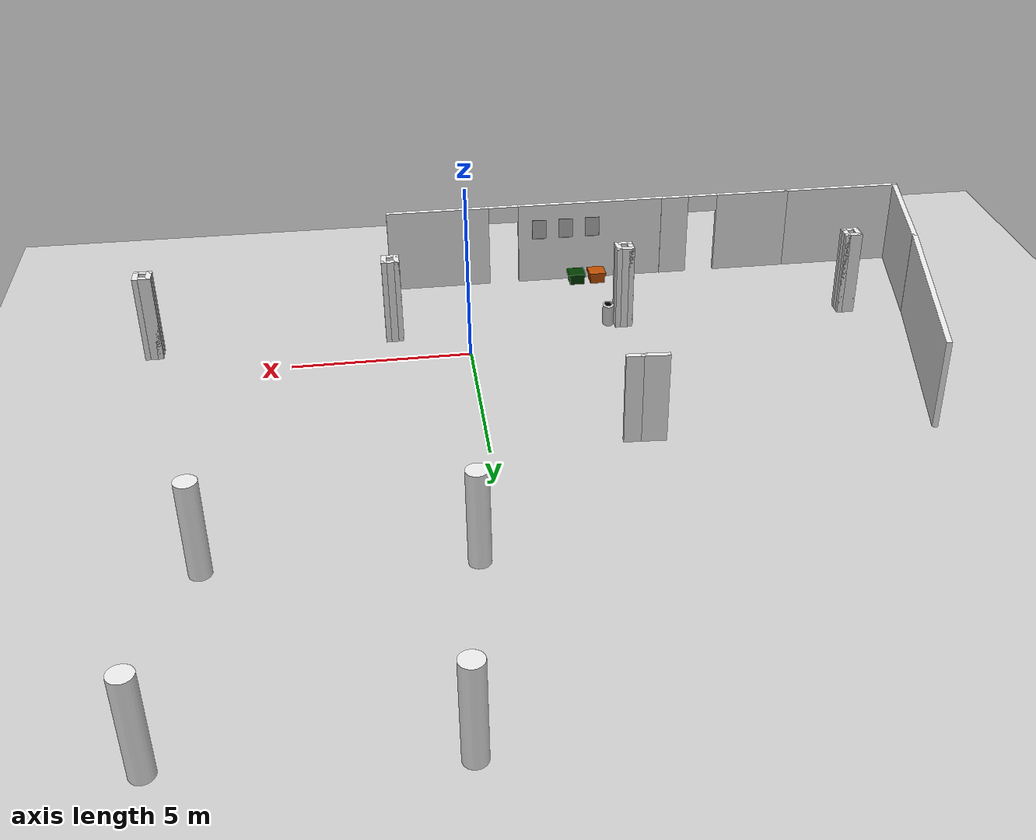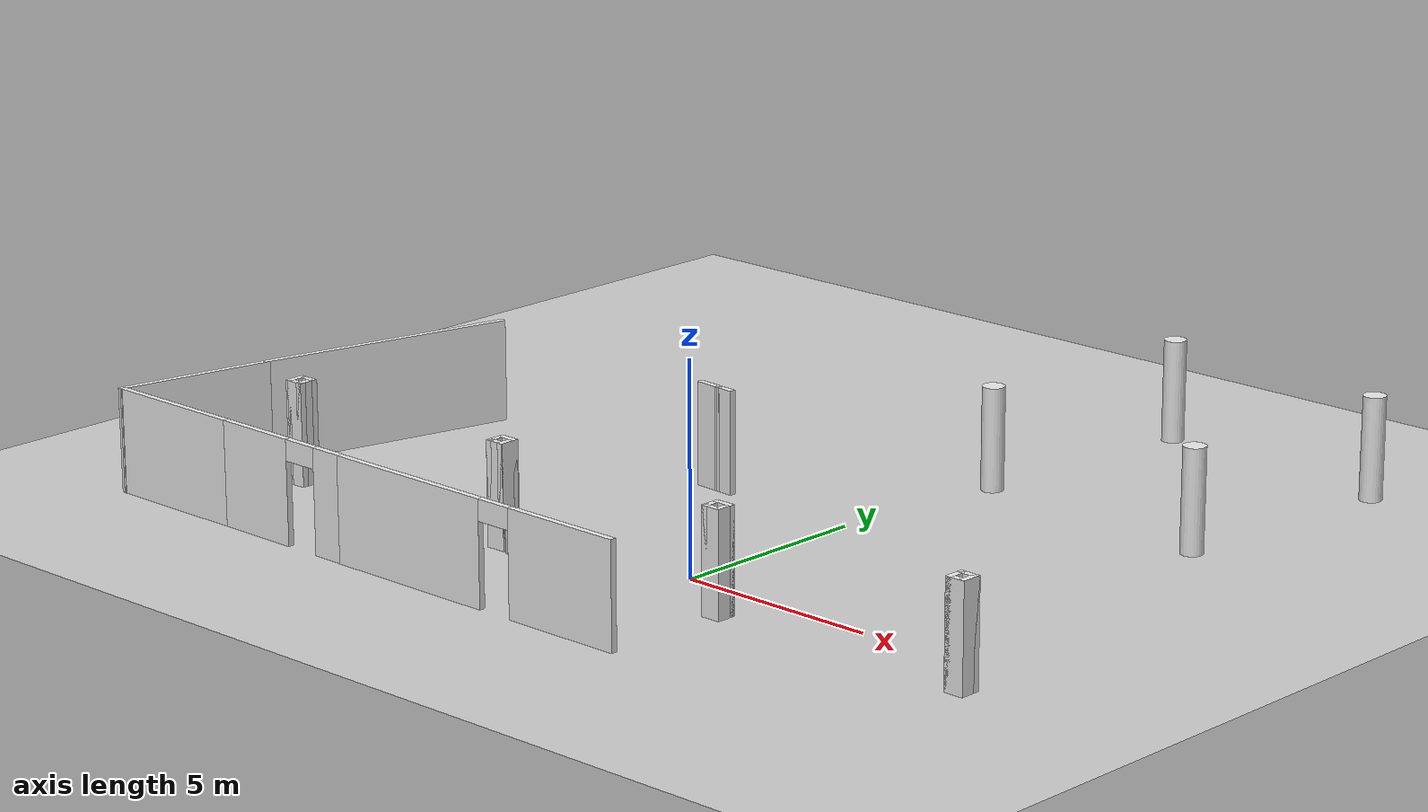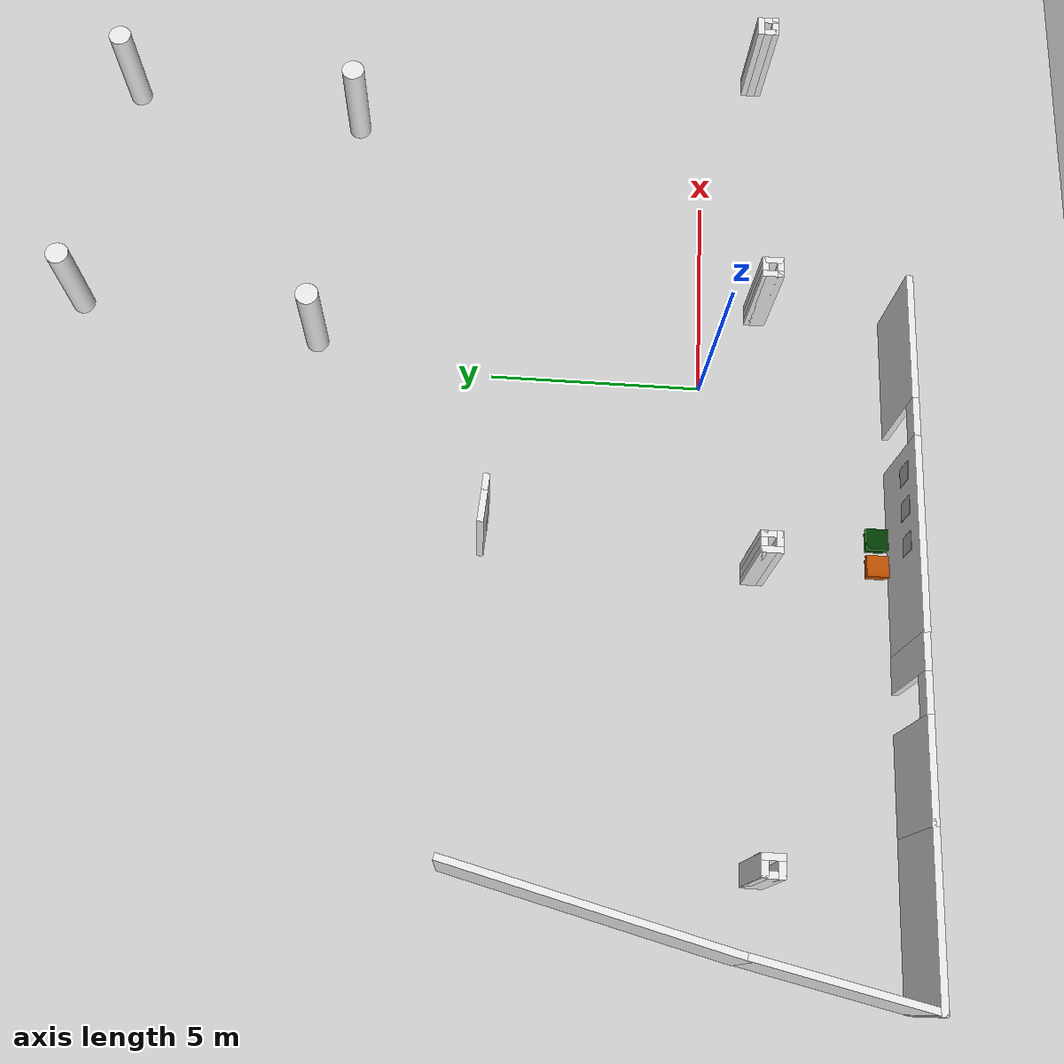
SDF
<sdf version="1.6">
 <world name="default">
  <model name="ground_plane">
   <static>1</static>
   <link name="link">
    <collision name="collision">
     <geometry><plane><normal>0 0 1</normal><size>100 100</size></plane></geometry>
     <surface><friction><ode><mu>100</mu><mu2>50</mu2></ode></friction></surface>
    </collision>
    <visual name="visual">
     <cast_shadows>0</cast_shadows>
     <geometry><plane><normal>0 0 1</normal><size>100 100</size></plane></geometry>
     <material>
      <script><uri>file://media/materials/scripts/gazebo.material</uri><name>Gazebo/Grey</name></script>
     </material>
    </visual>
   </link>
  </model>
  <model name="columns">
   <pose>-1.23086 -1.27462 0 0 -0 0</pose>
   <link name="Wall_337">
    <collision name="Wall_337_Collision">
     <geometry><box><size>0.5 0.15 2.5</size></box></geometry>
     <pose>0 0 1.25 0 -0 0</pose>
    </collision>
    <visual name="Wall_337_Visual">
     <pose>0 0 1.25 0 -0 0</pose>
     <geometry><box><size>0.5 0.15 2.5</size></box></geometry>
     <material>
      <script><uri>file://media/materials/scripts/gazebo.material</uri><name>Gazebo/White</name></script>
      <ambient>1 1 1 1</ambient>
     </material>
     <meta><layer>0</layer></meta>
    </visual>
    <pose>9.87053 0.009422 0 0 0 -1.5708</pose>
   </link>
   <link name="Wall_338">
    <collision name="Wall_338_Collision">
     <geometry><box><size>0.5 0.15 2.5</size></box></geometry>
     <pose>0 0 1.25 0 -0 0</pose>
    </collision>
    <visual name="Wall_338_Visual">
     <pose>0 0 1.25 0 -0 0</pose>
     <geometry><box><size>0.5 0.15 2.5</size></box></geometry>
     <material>
      <script><uri>file://media/materials/scripts/gazebo.material</uri><name>Gazebo/White</name></script>
      <ambient>1 1 1 1</ambient>
     </material>
     <meta><layer>0</layer></meta>
    </visual>
    <pose>10.0455 -0.165578 0 0 -0 0</pose>
   </link>
   <link name="Wall_339">
    <collision name="Wall_339_Collision">
     <geometry><box><size>0.5 0.15 2.5</size></box></geometry>
     <pose>0 0 1.25 0 -0 0</pose>
    </collision>
    <visual name="Wall_339_Visual">
     <pose>0 0 1.25 0 -0 0</pose>
     <geometry><box><size>0.5 0.15 2.5</size></box></geometry>
     <material>
      <script><uri>file://media/materials/scripts/gazebo.material</uri><name>Gazebo/White</name></script>
      <ambient>1 1 1 1</ambient>
     </material>
     <meta><layer>0</layer></meta>
    </visual>
    <pose>10.2205 0.009422 0 0 -0 1.5708</pose>
   </link>
   <link name="Wall_340">
    <collision name="Wall_340_Collision">
     <geometry><box><size>0.5 0.15 2.5</size></box></geometry>
     <pose>0 0 1.25 0 -0 0</pose>
    </collision>
    <visual name="Wall_340_Visual">
     <pose>0 0 1.25 0 -0 0</pose>
     <geometry><box><size>0.5 0.15 2.5</size></box></geometry>
     <material>
      <script><uri>file://media/materials/scripts/gazebo.material</uri><name>Gazebo/White</name></script>
      <ambient>1 1 1 1</ambient>
     </material>
     <meta><layer>0</layer></meta>
    </visual>
    <pose>10.0455 0.184422 0 0 -0 3.14159</pose>
   </link>
   <link name="Wall_342">
    <collision name="Wall_342_Collision">
     <geometry><box><size>0.5 0.15 2.5</size></box></geometry>
     <pose>0 0 1.25 0 -0 0</pose>
    </collision>
    <visual name="Wall_342_Visual">
     <pose>0 0 1.25 0 -0 0</pose>
     <geometry><box><size>0.5 0.15 2.5</size></box></geometry>
     <material>
      <script><uri>file://media/materials/scripts/gazebo.material</uri><name>Gazebo/White</name></script>
      <ambient>1 1 1 1</ambient>
     </material>
     <meta><layer>0</layer></meta>
    </visual>
    <pose>3.13524 -0.056002 0 0 0 -1.5708</pose>
   </link>
   <link name="Wall_343">
    <collision name="Wall_343_Collision">
     <geometry><box><size>0.5 0.15 2.5</size></box></geometry>
     <pose>0 0 1.25 0 -0 0</pose>
    </collision>
    <visual name="Wall_343_Visual">
     <pose>0 0 1.25 0 -0 0</pose>
     <geometry><box><size>0.5 0.15 2.5</size></box></geometry>
     <material>
      <script><uri>file://media/materials/scripts/gazebo.material</uri><name>Gazebo/White</name></script>
      <ambient>1 1 1 1</ambient>
     </material>
     <meta><layer>0</layer></meta>
    </visual>
    <pose>3.31024 -0.231003 0 0 -0 0</pose>
   </link>
   <link name="Wall_344">
    <collision name="Wall_344_Collision">
     <geometry><box><size>0.5 0.15 2.5</size></box></geometry>
     <pose>0 0 1.25 0 -0 0</pose>
    </collision>
    <visual name="Wall_344_Visual">
     <pose>0 0 1.25 0 -0 0</pose>
     <geometry><box><size>0.5 0.15 2.5</size></box></geometry>
     <material>
      <script><uri>file://media/materials/scripts/gazebo.material</uri><name>Gazebo/White</name></script>
      <ambient>1 1 1 1</ambient>
     </material>
     <meta><layer>0</layer></meta>
    </visual>
    <pose>3.48524 -0.056002 0 0 -0 1.5708</pose>
   </link>
   <link name="Wall_345">
    <collision name="Wall_345_Collision">
     <geometry><box><size>0.5 0.15 2.5</size></box></geometry>
     <pose>0 0 1.25 0 -0 0</pose>
    </collision>
    <visual name="Wall_345_Visual">
     <pose>0 0 1.25 0 -0 0</pose>
     <geometry><box><size>0.5 0.15 2.5</size></box></geometry>
     <material>
      <script><uri>file://media/materials/scripts/gazebo.material</uri><name>Gazebo/White</name></script>
      <ambient>1 1 1 1</ambient>
     </material>
     <meta><layer>0</layer></meta>
    </visual>
    <pose>3.31024 0.118997 0 0 -0 3.14159</pose>
   </link>
   <link name="Wall_350">
    <collision name="Wall_350_Collision">
     <geometry><box><size>0.5 0.15 2.5</size></box></geometry>
     <pose>0 0 1.25 0 -0 0</pose>
    </collision>
    <visual name="Wall_350_Visual">
     <pose>0 0 1.25 0 -0 0</pose>
     <geometry><box><size>0.5 0.15 2.5</size></box></geometry>
     <material>
      <script><uri>file://media/materials/scripts/gazebo.material</uri><name>Gazebo/White</name></script>
      <ambient>1 1 1 1</ambient>
     </material>
     <meta><layer>0</layer></meta>
    </visual>
    <pose>-3.34038 0.200077 0 0 -0 0</pose>
   </link>
   <link name="Wall_351">
    <collision name="Wall_351_Collision">
     <geometry><box><size>0.5 0.15 2.5</size></box></geometry>
     <pose>0 0 1.25 0 -0 0</pose>
    </collision>
    <visual name="Wall_351_Visual">
     <pose>0 0 1.25 0 -0 0</pose>
     <geometry><box><size>0.5 0.15 2.5</size></box></geometry>
     <material>
      <script><uri>file://media/materials/scripts/gazebo.material</uri><name>Gazebo/White</name></script>
      <ambient>1 1 1 1</ambient>
     </material>
     <meta><layer>0</layer></meta>
    </visual>
    <pose>-3.16538 0.025078 0 0 0 -1.5708</pose>
   </link>
   <link name="Wall_352">
    <collision name="Wall_352_Collision">
     <geometry><box><size>0.5 0.15 2.5</size></box></geometry>
     <pose>0 0 1.25 0 -0 0</pose>
    </collision>
    <visual name="Wall_352_Visual">
     <pose>0 0 1.25 0 -0 0</pose>
     <geometry><box><size>0.5 0.15 2.5</size></box></geometry>
     <material>
      <script><uri>file://media/materials/scripts/gazebo.material</uri><name>Gazebo/White</name></script>
      <ambient>1 1 1 1</ambient>
     </material>
     <meta><layer>0</layer></meta>
    </visual>
    <pose>-3.34038 -0.149923 0 0 -0 3.14159</pose>
   </link>
   <link name="Wall_353">
    <collision name="Wall_353_Collision">
     <geometry><box><size>0.5 0.15 2.5</size></box></geometry>
     <pose>0 0 1.25 0 -0 0</pose>
    </collision>
    <visual name="Wall_353_Visual">
     <pose>0 0 1.25 0 -0 0</pose>
     <geometry><box><size>0.5 0.15 2.5</size></box></geometry>
     <material>
      <script><uri>file://media/materials/scripts/gazebo.material</uri><name>Gazebo/White</name></script>
      <ambient>1 1 1 1</ambient>
     </material>
     <meta><layer>0</layer></meta>
    </visual>
    <pose>-3.51538 0.025078 0 0 -0 1.5708</pose>
   </link>
   <link name="Wall_355">
    <collision name="Wall_355_Collision">
     <geometry><box><size>0.5 0.15 2.5</size></box></geometry>
     <pose>0 0 1.25 0 -0 0</pose>
    </collision>
    <visual name="Wall_355_Visual">
     <pose>0 0 1.25 0 -0 0</pose>
     <geometry><box><size>0.5 0.15 2.5</size></box></geometry>
     <material>
      <script><uri>file://media/materials/scripts/gazebo.material</uri><name>Gazebo/White</name></script>
      <ambient>1 1 1 1</ambient>
     </material>
     <meta><layer>0</layer></meta>
    </visual>
    <pose>-10.2205 0.056002 0 0 0 -1.5708</pose>
   </link>
   <link name="Wall_356">
    <collision name="Wall_356_Collision">
     <geometry><box><size>0.5 0.15 2.5</size></box></geometry>
     <pose>0 0 1.25 0 -0 0</pose>
    </collision>
    <visual name="Wall_356_Visual">
     <pose>0 0 1.25 0 -0 0</pose>
     <geometry><box><size>0.5 0.15 2.5</size></box></geometry>
     <material>
      <script><uri>file://media/materials/scripts/gazebo.material</uri><name>Gazebo/White</name></script>
      <ambient>1 1 1 1</ambient>
     </material>
     <meta><layer>0</layer></meta>
    </visual>
    <pose>-10.0455 -0.118998 0 0 -0 0</pose>
   </link>
   <link name="Wall_357">
    <collision name="Wall_357_Collision">
     <geometry><box><size>0.5 0.15 2.5</size></box></geometry>
     <pose>0 0 1.25 0 -0 0</pose>
    </collision>
    <visual name="Wall_357_Visual">
     <pose>0 0 1.25 0 -0 0</pose>
     <geometry><box><size>0.5 0.15 2.5</size></box></geometry>
     <material>
      <script><uri>file://media/materials/scripts/gazebo.material</uri><name>Gazebo/White</name></script>
      <ambient>1 1 1 1</ambient>
     </material>
     <meta><layer>0</layer></meta>
    </visual>
    <pose>-9.87053 0.056002 0 0 -0 1.5708</pose>
   </link>
   <link name="Wall_358">
    <collision name="Wall_358_Collision">
     <geometry><box><size>0.5 0.15 2.5</size></box></geometry>
     <pose>0 0 1.25 0 -0 0</pose>
    </collision>
    <visual name="Wall_358_Visual">
     <pose>0 0 1.25 0 -0 0</pose>
     <geometry><box><size>0.5 0.15 2.5</size></box></geometry>
     <material>
      <script><uri>file://media/materials/scripts/gazebo.material</uri><name>Gazebo/White</name></script>
      <ambient>1 1 1 1</ambient>
     </material>
     <meta><layer>0</layer></meta>
    </visual>
    <pose>-10.0455 0.231003 0 0 -0 3.14159</pose>
   </link>
   <static>1</static>
  </model>
  <model name="ucu_basic_frame.world">
   <link name="Wall_187">
    <pose>-2.91004 -8.08571 0 0 0 -3.14</pose>
    <visual name="Wall_187_Visual_0">
     <pose>-2.67697 0 1.25 0 -0 0</pose>
     <geometry><box><size>3.06354 0.15 2.5</size></box></geometry>
     <material>
      <script><uri>file://media/materials/scripts/gazebo.material</uri><name>Gazebo/White</name></script>
      <ambient>1 1 1 1</ambient>
      <diffuse>1 1 1 1</diffuse>
      <specular>0 0 0 1</specular>
      <emissive>0 0 0 1</emissive>
     </material>
     <meta><layer>0</layer></meta>
    </visual>
    <visual name="Wall_187_Visual_2">
     <pose>-0.695201 0 2.25 0 -0 0</pose>
     <geometry><box><size>0.9 0.15 0.5</size></box></geometry>
     <material>
      <script><uri>file://media/materials/scripts/gazebo.material</uri><name>Gazebo/White</name></script>
      <ambient>1 1 1 1</ambient>
      <diffuse>1 1 1 1</diffuse>
      <specular>0 0 0 1</specular>
      <emissive>0 0 0 1</emissive>
     </material>
     <meta><layer>0</layer></meta>
    </visual>
    <visual name="Wall_187_Visual_1">
     <pose>1.98177 0 1.25 0 -0 0</pose>
     <geometry><box><size>4.45394 0.15 2.5</size></box></geometry>
     <material>
      <script><uri>file://media/materials/scripts/gazebo.material</uri><name>Gazebo/White</name></script>
      <ambient>1 1 1 1</ambient>
      <diffuse>1 1 1 1</diffuse>
      <specular>0 0 0 1</specular>
      <emissive>0 0 0 1</emissive>
     </material>
     <meta><layer>0</layer></meta>
    </visual>
    <collision name="Wall_187_Collision_0">
     <pose>-2.67697 0 1.25 0 -0 0</pose>
     <geometry><box><size>3.06354 0.15 2.5</size></box></geometry>
     <surface>
      <friction>
       <ode><mu>1</mu><mu2>1</mu2><fdir1>0 0 0</fdir1><slip1>0</slip1><slip2>0</slip2></ode>
       <torsional>
        <coefficient>1</coefficient>
        <patch_radius>0</patch_radius>
        <surface_radius>0</surface_radius>
        <use_patch_radius>1</use_patch_radius>
        <ode><slip>0</slip></ode>
       </torsional>
      </friction>
      <bounce><restitution_coefficient>0</restitution_coefficient><threshold>1e+06</threshold></bounce>
      <contact>
       <collide_without_contact>0</collide_without_contact>
       <collide_without_contact_bitmask>1</collide_without_contact_bitmask>
       <collide_bitmask>1</collide_bitmask>
       <ode>
        <soft_cfm>0</soft_cfm>
        <soft_erp>0.2</soft_erp>
        <kp>1e+13</kp>
        <kd>1</kd>
        <max_vel>0.01</max_vel>
        <min_depth>0</min_depth>
       </ode>
       <bullet>
        <split_impulse>1</split_impulse>
        <split_impulse_penetration_threshold>-0.01</split_impulse_penetration_threshold>
        <soft_cfm>0</soft_cfm>
        <soft_erp>0.2</soft_erp>
        <kp>1e+13</kp>
        <kd>1</kd>
       </bullet>
      </contact>
     </surface>
    </collision>
    <collision name="Wall_187_Collision_1">
     <pose>1.98177 0 1.25 0 -0 0</pose>
     <geometry><box><size>4.45394 0.15 2.5</size></box></geometry>
     <surface>
      <friction>
       <ode><mu>1</mu><mu2>1</mu2><fdir1>0 0 0</fdir1><slip1>0</slip1><slip2>0</slip2></ode>
       <torsional>
        <coefficient>1</coefficient>
        <patch_radius>0</patch_radius>
        <surface_radius>0</surface_radius>
        <use_patch_radius>1</use_patch_radius>
        <ode><slip>0</slip></ode>
       </torsional>
      </friction>
      <bounce><restitution_coefficient>0</restitution_coefficient><threshold>1e+06</threshold></bounce>
      <contact>
       <collide_without_contact>0</collide_without_contact>
       <collide_without_contact_bitmask>1</collide_without_contact_bitmask>
       <collide_bitmask>1</collide_bitmask>
       <ode>
        <soft_cfm>0</soft_cfm>
        <soft_erp>0.2</soft_erp>
        <kp>1e+13</kp>
        <kd>1</kd>
        <max_vel>0.01</max_vel>
        <min_depth>0</min_depth>
       </ode>
       <bullet>
        <split_impulse>1</split_impulse>
        <split_impulse_penetration_threshold>-0.01</split_impulse_penetration_threshold>
        <soft_cfm>0</soft_cfm>
        <soft_erp>0.2</soft_erp>
        <kp>1e+13</kp>
        <kd>1</kd>
       </bullet>
      </contact>
     </surface>
    </collision>
    <collision name="Wall_187_Collision_2">
     <pose>-0.695201 0 2.25 0 -0 0</pose>
     <geometry><box><size>0.9 0.15 0.5</size></box></geometry>
     <surface>
      <friction>
       <ode><mu>1</mu><mu2>1</mu2><fdir1>0 0 0</fdir1><slip1>0</slip1><slip2>0</slip2></ode>
       <torsional>
        <coefficient>1</coefficient>
        <patch_radius>0</patch_radius>
        <surface_radius>0</surface_radius>
        <use_patch_radius>1</use_patch_radius>
        <ode><slip>0</slip></ode>
       </torsional>
      </friction>
      <bounce><restitution_coefficient>0</restitution_coefficient><threshold>1e+06</threshold></bounce>
      <contact>
       <collide_without_contact>0</collide_without_contact>
       <collide_without_contact_bitmask>1</collide_without_contact_bitmask>
       <collide_bitmask>1</collide_bitmask>
       <ode>
        <soft_cfm>0</soft_cfm>
        <soft_erp>0.2</soft_erp>
        <kp>1e+13</kp>
        <kd>1</kd>
        <max_vel>0.01</max_vel>
        <min_depth>0</min_depth>
       </ode>
       <bullet>
        <split_impulse>1</split_impulse>
        <split_impulse_penetration_threshold>-0.01</split_impulse_penetration_threshold>
        <soft_cfm>0</soft_cfm>
        <soft_erp>0.2</soft_erp>
        <kp>1e+13</kp>
        <kd>1</kd>
       </bullet>
      </contact>
     </surface>
    </collision>
   </link>
   <link name="Wall_204">
    <pose>-9.07773 -8.07913 0 0 -0 0</pose>
    <visual name="Wall_204_Visual_0">
     <pose>-0.86786 0 1.25 0 -0 0</pose>
     <geometry><box><size>2.24559 0.15 2.5</size></box></geometry>
     <material>
      <script><uri>file://media/materials/scripts/gazebo.material</uri><name>Gazebo/White</name></script>
      <ambient>1 1 1 1</ambient>
      <diffuse>1 1 1 1</diffuse>
      <specular>0 0 0 1</specular>
      <emissive>0 0 0 1</emissive>
     </material>
     <meta><layer>0</layer></meta>
    </visual>
    <visual name="Wall_204_Visual_1">
     <pose>1.57279 0 1.25 0 -0 0</pose>
     <geometry><box><size>0.835719 0.15 2.5</size></box></geometry>
     <material>
      <script><uri>file://media/materials/scripts/gazebo.material</uri><name>Gazebo/White</name></script>
      <ambient>1 1 1 1</ambient>
      <diffuse>1 1 1 1</diffuse>
      <specular>0 0 0 1</specular>
      <emissive>0 0 0 1</emissive>
     </material>
     <meta><layer>0</layer></meta>
    </visual>
    <visual name="Wall_204_Visual_2">
     <pose>0.704935 0 2.25 0 -0 0</pose>
     <geometry><box><size>0.9 0.15 0.5</size></box></geometry>
     <material>
      <script><uri>file://media/materials/scripts/gazebo.material</uri><name>Gazebo/White</name></script>
      <ambient>1 1 1 1</ambient>
      <diffuse>1 1 1 1</diffuse>
      <specular>0 0 0 1</specular>
      <emissive>0 0 0 1</emissive>
     </material>
     <meta><layer>0</layer></meta>
    </visual>
    <collision name="Wall_204_Collision_0">
     <pose>-0.86786 0 1.25 0 -0 0</pose>
     <geometry><box><size>2.24559 0.15 2.5</size></box></geometry>
     <surface>
      <friction>
       <ode><mu>1</mu><mu2>1</mu2><fdir1>0 0 0</fdir1><slip1>0</slip1><slip2>0</slip2></ode>
       <torsional>
        <coefficient>1</coefficient>
        <patch_radius>0</patch_radius>
        <surface_radius>0</surface_radius>
        <use_patch_radius>1</use_patch_radius>
        <ode><slip>0</slip></ode>
       </torsional>
      </friction>
      <bounce><restitution_coefficient>0</restitution_coefficient><threshold>1e+06</threshold></bounce>
      <contact>
       <collide_without_contact>0</collide_without_contact>
       <collide_without_contact_bitmask>1</collide_without_contact_bitmask>
       <collide_bitmask>1</collide_bitmask>
       <ode>
        <soft_cfm>0</soft_cfm>
        <soft_erp>0.2</soft_erp>
        <kp>1e+13</kp>
        <kd>1</kd>
        <max_vel>0.01</max_vel>
        <min_depth>0</min_depth>
       </ode>
       <bullet>
        <split_impulse>1</split_impulse>
        <split_impulse_penetration_threshold>-0.01</split_impulse_penetration_threshold>
        <soft_cfm>0</soft_cfm>
        <soft_erp>0.2</soft_erp>
        <kp>1e+13</kp>
        <kd>1</kd>
       </bullet>
      </contact>
     </surface>
    </collision>
    <collision name="Wall_204_Collision_1">
     <pose>1.57279 0 1.25 0 -0 0</pose>
     <geometry><box><size>0.835719 0.15 2.5</size></box></geometry>
     <surface>
      <friction>
       <ode><mu>1</mu><mu2>1</mu2><fdir1>0 0 0</fdir1><slip1>0</slip1><slip2>0</slip2></ode>
       <torsional>
        <coefficient>1</coefficient>
        <patch_radius>0</patch_radius>
        <surface_radius>0</surface_radius>
        <use_patch_radius>1</use_patch_radius>
        <ode><slip>0</slip></ode>
       </torsional>
      </friction>
      <bounce><restitution_coefficient>0</restitution_coefficient><threshold>1e+06</threshold></bounce>
      <contact>
       <collide_without_contact>0</collide_without_contact>
       <collide_without_contact_bitmask>1</collide_without_contact_bitmask>
       <collide_bitmask>1</collide_bitmask>
       <ode>
        <soft_cfm>0</soft_cfm>
        <soft_erp>0.2</soft_erp>
        <kp>1e+13</kp>
        <kd>1</kd>
        <max_vel>0.01</max_vel>
        <min_depth>0</min_depth>
       </ode>
       <bullet>
        <split_impulse>1</split_impulse>
        <split_impulse_penetration_threshold>-0.01</split_impulse_penetration_threshold>
        <soft_cfm>0</soft_cfm>
        <soft_erp>0.2</soft_erp>
        <kp>1e+13</kp>
        <kd>1</kd>
       </bullet>
      </contact>
     </surface>
    </collision>
    <collision name="Wall_204_Collision_2">
     <pose>0.704935 0 2.25 0 -0 0</pose>
     <geometry><box><size>0.9 0.15 0.5</size></box></geometry>
     <surface>
      <friction>
       <ode><mu>1</mu><mu2>1</mu2><fdir1>0 0 0</fdir1><slip1>0</slip1><slip2>0</slip2></ode>
       <torsional>
        <coefficient>1</coefficient>
        <patch_radius>0</patch_radius>
        <surface_radius>0</surface_radius>
        <use_patch_radius>1</use_patch_radius>
        <ode><slip>0</slip></ode>
       </torsional>
      </friction>
      <bounce><restitution_coefficient>0</restitution_coefficient><threshold>1e+06</threshold></bounce>
      <contact>
       <collide_without_contact>0</collide_without_contact>
       <collide_without_contact_bitmask>1</collide_without_contact_bitmask>
       <collide_bitmask>1</collide_bitmask>
       <ode>
        <soft_cfm>0</soft_cfm>
        <soft_erp>0.2</soft_erp>
        <kp>1e+13</kp>
        <kd>1</kd>
        <max_vel>0.01</max_vel>
        <min_depth>0</min_depth>
       </ode>
       <bullet>
        <split_impulse>1</split_impulse>
        <split_impulse_penetration_threshold>-0.01</split_impulse_penetration_threshold>
        <soft_cfm>0</soft_cfm>
        <soft_erp>0.2</soft_erp>
        <kp>1e+13</kp>
        <kd>1</kd>
       </bullet>
      </contact>
     </surface>
    </collision>
   </link>
   <link name="Wall_211">
    <pose>-12.7573 -8.07913 0 0 -0 3.14159</pose>
    <visual name="Wall_211_Visual">
     <pose>0 0 1.25 0 -0 0</pose>
     <geometry><box><size>3.67855 0.15 2.5</size></box></geometry>
     <material>
      <script><uri>file://media/materials/scripts/gazebo.material</uri><name>Gazebo/White</name></script>
      <ambient>1 1 1 1</ambient>
      <diffuse>1 1 1 1</diffuse>
      <specular>0 0 0 1</specular>
      <emissive>0 0 0 1</emissive>
     </material>
     <meta><layer>0</layer></meta>
    </visual>
    <collision name="Wall_211_Collision">
     <pose>0 0 1.25 0 -0 0</pose>
     <geometry><box><size>3.67855 0.15 2.5</size></box></geometry>
     <surface>
      <friction>
       <ode><mu>1</mu><mu2>1</mu2><fdir1>0 0 0</fdir1><slip1>0</slip1><slip2>0</slip2></ode>
       <torsional>
        <coefficient>1</coefficient>
        <patch_radius>0</patch_radius>
        <surface_radius>0</surface_radius>
        <use_patch_radius>1</use_patch_radius>
        <ode><slip>0</slip></ode>
       </torsional>
      </friction>
      <bounce><restitution_coefficient>0</restitution_coefficient><threshold>1e+06</threshold></bounce>
      <contact>
       <collide_without_contact>0</collide_without_contact>
       <collide_without_contact_bitmask>1</collide_without_contact_bitmask>
       <collide_bitmask>1</collide_bitmask>
       <ode>
        <soft_cfm>0</soft_cfm>
        <soft_erp>0.2</soft_erp>
        <kp>1e+13</kp>
        <kd>1</kd>
        <max_vel>0.01</max_vel>
        <min_depth>0</min_depth>
       </ode>
       <bullet>
        <split_impulse>1</split_impulse>
        <split_impulse_penetration_threshold>-0.01</split_impulse_penetration_threshold>
        <soft_cfm>0</soft_cfm>
        <soft_erp>0.2</soft_erp>
        <kp>1e+13</kp>
        <kd>1</kd>
       </bullet>
      </contact>
     </surface>
    </collision>
   </link>
   <link name="Wall_215">
    <pose>-14.1457 -6.25128 0 0 -0 1.36809</pose>
    <visual name="Wall_215_Visual">
     <pose>0 0 1.25 0 -0 0</pose>
     <geometry><box><size>3.88211 0.15 2.5</size></box></geometry>
     <material>
      <script><uri>file://media/materials/scripts/gazebo.material</uri><name>Gazebo/White</name></script>
      <ambient>1 1 1 1</ambient>
      <diffuse>1 1 1 1</diffuse>
      <specular>0 0 0 1</specular>
      <emissive>0 0 0 1</emissive>
     </material>
     <meta><layer>0</layer></meta>
    </visual>
    <collision name="Wall_215_Collision">
     <pose>0 0 1.25 0 -0 0</pose>
     <geometry><box><size>3.88211 0.15 2.5</size></box></geometry>
     <surface>
      <friction>
       <ode><mu>1</mu><mu2>1</mu2><fdir1>0 0 0</fdir1><slip1>0</slip1><slip2>0</slip2></ode>
       <torsional>
        <coefficient>1</coefficient>
        <patch_radius>0</patch_radius>
        <surface_radius>0</surface_radius>
        <use_patch_radius>1</use_patch_radius>
        <ode><slip>0</slip></ode>
       </torsional>
      </friction>
      <bounce><restitution_coefficient>0</restitution_coefficient><threshold>1e+06</threshold></bounce>
      <contact>
       <collide_without_contact>0</collide_without_contact>
       <collide_without_contact_bitmask>1</collide_without_contact_bitmask>
       <collide_bitmask>1</collide_bitmask>
       <ode>
        <soft_cfm>0</soft_cfm>
        <soft_erp>0.2</soft_erp>
        <kp>1e+13</kp>
        <kd>1</kd>
        <max_vel>0.01</max_vel>
        <min_depth>0</min_depth>
       </ode>
       <bullet>
        <split_impulse>1</split_impulse>
        <split_impulse_penetration_threshold>-0.01</split_impulse_penetration_threshold>
        <soft_cfm>0</soft_cfm>
        <soft_erp>0.2</soft_erp>
        <kp>1e+13</kp>
        <kd>1</kd>
       </bullet>
      </contact>
     </surface>
    </collision>
   </link>
   <link name="Wall_216">
    <pose>-13.0355 -1.31077 0 0 -0 1.3362</pose>
    <visual name="Wall_216_Visual">
     <pose>0 0 1.25 0 -0 0</pose>
     <geometry><box><size>6.46944 0.15 2.5</size></box></geometry>
     <material>
      <script><uri>file://media/materials/scripts/gazebo.material</uri><name>Gazebo/White</name></script>
      <ambient>1 1 1 1</ambient>
      <diffuse>1 1 1 1</diffuse>
      <specular>0 0 0 1</specular>
      <emissive>0 0 0 1</emissive>
     </material>
     <meta><layer>0</layer></meta>
    </visual>
    <collision name="Wall_216_Collision">
     <pose>0 0 1.25 0 -0 0</pose>
     <geometry><box><size>6.46944 0.15 2.5</size></box></geometry>
     <surface>
      <friction>
       <ode><mu>1</mu><mu2>1</mu2><fdir1>0 0 0</fdir1><slip1>0</slip1><slip2>0</slip2></ode>
       <torsional>
        <coefficient>1</coefficient>
        <patch_radius>0</patch_radius>
        <surface_radius>0</surface_radius>
        <use_patch_radius>1</use_patch_radius>
        <ode><slip>0</slip></ode>
       </torsional>
      </friction>
      <bounce><restitution_coefficient>0</restitution_coefficient><threshold>1e+06</threshold></bounce>
      <contact>
       <collide_without_contact>0</collide_without_contact>
       <collide_without_contact_bitmask>1</collide_without_contact_bitmask>
       <collide_bitmask>1</collide_bitmask>
       <ode>
        <soft_cfm>0</soft_cfm>
        <soft_erp>0.2</soft_erp>
        <kp>1e+13</kp>
        <kd>1</kd>
        <max_vel>0.01</max_vel>
        <min_depth>0</min_depth>
       </ode>
       <bullet>
        <split_impulse>1</split_impulse>
        <split_impulse_penetration_threshold>-0.01</split_impulse_penetration_threshold>
        <soft_cfm>0</soft_cfm>
        <soft_erp>0.2</soft_erp>
        <kp>1e+13</kp>
        <kd>1</kd>
       </bullet>
      </contact>
     </surface>
    </collision>
   </link>
   <link name="Wall_251">
    <pose>-4.44062 1.31279 0 0 0 -0.055434</pose>
    <visual name="Wall_251_Visual">
     <pose>0 0 1.25 0 -0 0</pose>
     <geometry><box><size>0.528652 0.15 2.5</size></box></geometry>
     <material>
      <script><uri>file://media/materials/scripts/gazebo.material</uri><name>Gazebo/White</name></script>
      <ambient>1 1 1 1</ambient>
      <diffuse>1 1 1 1</diffuse>
      <specular>0 0 0 1</specular>
      <emissive>0 0 0 1</emissive>
     </material>
     <meta><layer>0</layer></meta>
    </visual>
    <collision name="Wall_251_Collision">
     <pose>0 0 1.25 0 -0 0</pose>
     <geometry><box><size>0.528652 0.15 2.5</size></box></geometry>
     <surface>
      <friction>
       <ode><mu>1</mu><mu2>1</mu2><fdir1>0 0 0</fdir1><slip1>0</slip1><slip2>0</slip2></ode>
       <torsional>
        <coefficient>1</coefficient>
        <patch_radius>0</patch_radius>
        <surface_radius>0</surface_radius>
        <use_patch_radius>1</use_patch_radius>
        <ode><slip>0</slip></ode>
       </torsional>
      </friction>
      <bounce><restitution_coefficient>0</restitution_coefficient><threshold>1e+06</threshold></bounce>
      <contact>
       <collide_without_contact>0</collide_without_contact>
       <collide_without_contact_bitmask>1</collide_without_contact_bitmask>
       <collide_bitmask>1</collide_bitmask>
       <ode>
        <soft_cfm>0</soft_cfm>
        <soft_erp>0.2</soft_erp>
        <kp>1e+13</kp>
        <kd>1</kd>
        <max_vel>0.01</max_vel>
        <min_depth>0</min_depth>
       </ode>
       <bullet>
        <split_impulse>1</split_impulse>
        <split_impulse_penetration_threshold>-0.01</split_impulse_penetration_threshold>
        <soft_cfm>0</soft_cfm>
        <soft_erp>0.2</soft_erp>
        <kp>1e+13</kp>
        <kd>1</kd>
       </bullet>
      </contact>
     </surface>
    </collision>
   </link>
   <link name="Wall_254">
    <pose>-4.91992 1.34515 0 0 -0 3.06638</pose>
    <visual name="Wall_254_Visual">
     <pose>0 0 1.25 0 -0 0</pose>
     <geometry><box><size>0.732308 0.15 2.5</size></box></geometry>
     <material>
      <script><uri>file://media/materials/scripts/gazebo.material</uri><name>Gazebo/White</name></script>
      <ambient>1 1 1 1</ambient>
      <diffuse>1 1 1 1</diffuse>
      <specular>0 0 0 1</specular>
      <emissive>0 0 0 1</emissive>
     </material>
     <meta><layer>0</layer></meta>
    </visual>
    <collision name="Wall_254_Collision">
     <pose>0 0 1.25 0 -0 0</pose>
     <geometry><box><size>0.732308 0.15 2.5</size></box></geometry>
     <surface>
      <friction>
       <ode><mu>1</mu><mu2>1</mu2><fdir1>0 0 0</fdir1><slip1>0</slip1><slip2>0</slip2></ode>
       <torsional>
        <coefficient>1</coefficient>
        <patch_radius>0</patch_radius>
        <surface_radius>0</surface_radius>
        <use_patch_radius>1</use_patch_radius>
        <ode><slip>0</slip></ode>
       </torsional>
      </friction>
      <bounce><restitution_coefficient>0</restitution_coefficient><threshold>1e+06</threshold></bounce>
      <contact>
       <collide_without_contact>0</collide_without_contact>
       <collide_without_contact_bitmask>1</collide_without_contact_bitmask>
       <collide_bitmask>1</collide_bitmask>
       <ode>
        <soft_cfm>0</soft_cfm>
        <soft_erp>0.2</soft_erp>
        <kp>1e+13</kp>
        <kd>1</kd>
        <max_vel>0.01</max_vel>
        <min_depth>0</min_depth>
       </ode>
       <bullet>
        <split_impulse>1</split_impulse>
        <split_impulse_penetration_threshold>-0.01</split_impulse_penetration_threshold>
        <soft_cfm>0</soft_cfm>
        <soft_erp>0.2</soft_erp>
        <kp>1e+13</kp>
        <kd>1</kd>
       </bullet>
      </contact>
     </surface>
    </collision>
   </link>
   <static>1</static>
   <pose>0.7577 3.6363 0 0 -0 0</pose>
  </model>
  <model name="colums_lectorium">
   <pose>0.053585 0.03406 0.011709 0 0 -2e-05</pose>
   <link name="column_lect_1">
    <pose>1.3 15.16 1.23829 0 -0 0</pose>
    <inertial>
     <mass>1</mass>
     <inertia><ixx>0.145833</ixx><ixy>0</ixy><ixz>0</ixz><iyy>0.145833</iyy><iyz>0</iyz><izz>0.125</izz></inertia>
    </inertial>
    <visual name="visual">
     <geometry><cylinder><radius>0.27</radius><length>2.5</length></cylinder></geometry>
     <material>
      <lighting>1</lighting>
      <script><uri>file://media/materials/scripts/gazebo.material</uri><name>Gazebo/White</name></script>
      <ambient>0.3 0.3 0.3 1</ambient>
      <diffuse>0.7 0.7 0.7 1</diffuse>
      <specular>0.01 0.01 0.01 1</specular>
      <emissive>0 0 0 1</emissive>
      <shader type="vertex"><normal_map>__default__</normal_map></shader>
     </material>
    </visual>
    <collision name="collision">
     <geometry><cylinder><radius>0.27</radius><length>2.5</length></cylinder></geometry>
     <surface>
      <friction>
       <ode><mu>1</mu><mu2>1</mu2><fdir1>0 0 0</fdir1><slip1>0</slip1><slip2>0</slip2></ode>
       <torsional>
        <coefficient>1</coefficient>
        <patch_radius>0</patch_radius>
        <surface_radius>0</surface_radius>
        <use_patch_radius>1</use_patch_radius>
        <ode><slip>0</slip></ode>
       </torsional>
      </friction>
      <bounce><restitution_coefficient>0</restitution_coefficient><threshold>1e+06</threshold></bounce>
      <contact>
       <collide_without_contact>0</collide_without_contact>
       <collide_without_contact_bitmask>1</collide_without_contact_bitmask>
       <collide_bitmask>1</collide_bitmask>
       <ode>
        <soft_cfm>0</soft_cfm>
        <soft_erp>0.2</soft_erp>
        <kp>1e+13</kp>
        <kd>1</kd>
        <max_vel>0.01</max_vel>
        <min_depth>0</min_depth>
       </ode>
       <bullet>
        <split_impulse>1</split_impulse>
        <split_impulse_penetration_threshold>-0.01</split_impulse_penetration_threshold>
        <soft_cfm>0</soft_cfm>
        <soft_erp>0.2</soft_erp>
        <kp>1e+13</kp>
        <kd>1</kd>
       </bullet>
      </contact>
     </surface>
    </collision>
   </link>
   <link name="column_lect_2">
    <pose>7.44143 14.6492 1.23829 0 -0 0</pose>
    <inertial>
     <mass>1</mass>
     <inertia><ixx>0.145833</ixx><ixy>0</ixy><ixz>0</ixz><iyy>0.145833</iyy><iyz>0</iyz><izz>0.125</izz></inertia>
    </inertial>
    <visual name="visual">
     <geometry><cylinder><radius>0.27</radius><length>2.5</length></cylinder></geometry>
     <material>
      <lighting>1</lighting>
      <script><uri>file://media/materials/scripts/gazebo.material</uri><name>Gazebo/White</name></script>
      <ambient>0.3 0.3 0.3 1</ambient>
      <diffuse>0.7 0.7 0.7 1</diffuse>
      <specular>0.01 0.01 0.01 1</specular>
      <emissive>0 0 0 1</emissive>
      <shader type="vertex"><normal_map>__default__</normal_map></shader>
     </material>
    </visual>
    <collision name="collision">
     <geometry><cylinder><radius>0.27</radius><length>2.5</length></cylinder></geometry>
     <surface>
      <friction>
       <ode><mu>1</mu><mu2>1</mu2><fdir1>0 0 0</fdir1><slip1>0</slip1><slip2>0</slip2></ode>
       <torsional>
        <coefficient>1</coefficient>
        <patch_radius>0</patch_radius>
        <surface_radius>0</surface_radius>
        <use_patch_radius>1</use_patch_radius>
        <ode><slip>0</slip></ode>
       </torsional>
      </friction>
      <bounce><restitution_coefficient>0</restitution_coefficient><threshold>1e+06</threshold></bounce>
      <contact>
       <collide_without_contact>0</collide_without_contact>
       <collide_without_contact_bitmask>1</collide_without_contact_bitmask>
       <collide_bitmask>1</collide_bitmask>
       <ode>
        <soft_cfm>0</soft_cfm>
        <soft_erp>0.2</soft_erp>
        <kp>1e+13</kp>
        <kd>1</kd>
        <max_vel>0.01</max_vel>
        <min_depth>0</min_depth>
       </ode>
       <bullet>
        <split_impulse>1</split_impulse>
        <split_impulse_penetration_threshold>-0.01</split_impulse_penetration_threshold>
        <soft_cfm>0</soft_cfm>
        <soft_erp>0.2</soft_erp>
        <kp>1e+13</kp>
        <kd>1</kd>
       </bullet>
      </contact>
     </surface>
    </collision>
   </link>
   <link name="column_lect_3">
    <pose>6.79899 8.81813 1.23829 0 -0 0</pose>
    <inertial>
     <mass>1</mass>
     <inertia><ixx>0.145833</ixx><ixy>0</ixy><ixz>0</ixz><iyy>0.145833</iyy><iyz>0</iyz><izz>0.125</izz></inertia>
    </inertial>
    <visual name="visual">
     <geometry><cylinder><radius>0.27</radius><length>2.5</length></cylinder></geometry>
     <material>
      <lighting>1</lighting>
      <script><uri>file://media/materials/scripts/gazebo.material</uri><name>Gazebo/White</name></script>
      <ambient>0.3 0.3 0.3 1</ambient>
      <diffuse>0.7 0.7 0.7 1</diffuse>
      <specular>0.01 0.01 0.01 1</specular>
      <emissive>0 0 0 1</emissive>
      <shader type="vertex"><normal_map>__default__</normal_map></shader>
     </material>
    </visual>
    <collision name="collision">
     <geometry><cylinder><radius>0.27</radius><length>2.5</length></cylinder></geometry>
     <surface>
      <friction>
       <ode><mu>1</mu><mu2>1</mu2><fdir1>0 0 0</fdir1><slip1>0</slip1><slip2>0</slip2></ode>
       <torsional>
        <coefficient>1</coefficient>
        <patch_radius>0</patch_radius>
        <surface_radius>0</surface_radius>
        <use_patch_radius>1</use_patch_radius>
        <ode><slip>0</slip></ode>
       </torsional>
      </friction>
      <bounce><restitution_coefficient>0</restitution_coefficient><threshold>1e+06</threshold></bounce>
      <contact>
       <collide_without_contact>0</collide_without_contact>
       <collide_without_contact_bitmask>1</collide_without_contact_bitmask>
       <collide_bitmask>1</collide_bitmask>
       <ode>
        <soft_cfm>0</soft_cfm>
        <soft_erp>0.2</soft_erp>
        <kp>1e+13</kp>
        <kd>1</kd>
        <max_vel>0.01</max_vel>
        <min_depth>0</min_depth>
       </ode>
       <bullet>
        <split_impulse>1</split_impulse>
        <split_impulse_penetration_threshold>-0.01</split_impulse_penetration_threshold>
        <soft_cfm>0</soft_cfm>
        <soft_erp>0.2</soft_erp>
        <kp>1e+13</kp>
        <kd>1</kd>
       </bullet>
      </contact>
     </surface>
    </collision>
   </link>
   <link name="column_lect_4">
    <pose>0.627339 9.28477 1.23829 0 -0 0</pose>
    <inertial>
     <mass>1</mass>
     <inertia><ixx>0.145833</ixx><ixy>0</ixy><ixz>0</ixz><iyy>0.145833</iyy><iyz>0</iyz><izz>0.125</izz></inertia>
    </inertial>
    <visual name="visual">
     <geometry><cylinder><radius>0.27</radius><length>2.5</length></cylinder></geometry>
     <material>
      <lighting>1</lighting>
      <script><uri>file://media/materials/scripts/gazebo.material</uri><name>Gazebo/White</name></script>
      <ambient>0.3 0.3 0.3 1</ambient>
      <diffuse>0.7 0.7 0.7 1</diffuse>
      <specular>0.01 0.01 0.01 1</specular>
      <emissive>0 0 0 1</emissive>
      <shader type="vertex"><normal_map>__default__</normal_map></shader>
     </material>
    </visual>
    <collision name="collision">
     <geometry><cylinder><radius>0.27</radius><length>2.5</length></cylinder></geometry>
     <surface>
      <friction>
       <ode><mu>1</mu><mu2>1</mu2><fdir1>0 0 0</fdir1><slip1>0</slip1><slip2>0</slip2></ode>
       <torsional>
        <coefficient>1</coefficient>
        <patch_radius>0</patch_radius>
        <surface_radius>0</surface_radius>
        <use_patch_radius>1</use_patch_radius>
        <ode><slip>0</slip></ode>
       </torsional>
      </friction>
      <bounce><restitution_coefficient>0</restitution_coefficient><threshold>1e+06</threshold></bounce>
      <contact>
       <collide_without_contact>0</collide_without_contact>
       <collide_without_contact_bitmask>1</collide_without_contact_bitmask>
       <collide_bitmask>1</collide_bitmask>
       <ode>
        <soft_cfm>0</soft_cfm>
        <soft_erp>0.2</soft_erp>
        <kp>1e+13</kp>
        <kd>1</kd>
        <max_vel>0.01</max_vel>
        <min_depth>0</min_depth>
       </ode>
       <bullet>
        <split_impulse>1</split_impulse>
        <split_impulse_penetration_threshold>-0.01</split_impulse_penetration_threshold>
        <soft_cfm>0</soft_cfm>
        <soft_erp>0.2</soft_erp>
        <kp>1e+13</kp>
        <kd>1</kd>
       </bullet>
      </contact>
     </surface>
    </collision>
   </link>
   <static>0</static>
  </model>
  <model name="p9_adrian_slywotzky">
   <pose>-2.55 -4.35 1.72 -1.57 -0 -0.02</pose>
   <static>1</static>
   <link name="model_body">
    <visual name="visual">
     <geometry>
      <mesh><uri>model://robert_gazebo/meshes/pictures/p9_adrian_slywotzky.dae</uri><scale>1 1 1</scale></mesh>
     </geometry>
    </visual>
    <collision name="collision"><geometry><box><size>0.44 0.61 0.01</size></box></geometry></collision>
    <inertial>
     <inertia><ixx>0.016</ixx><ixy>0</ixy><ixz>0</ixz><iyy>0.008</iyy><iyz>0</iyz><izz>0.024</izz></inertia>
     <mass>0.5</mass>
    </inertial>
   </link>
  </model>
  <model name="p10_bohdan_hawrylyshyn">
   <pose>-3.36 -4.35 1.72 -1.57 -0 -0.02</pose>
   <static>1</static>
   <link name="model_body">
    <visual name="visual">
     <geometry>
      <mesh><uri>model://robert_gazebo/meshes/pictures/p10_bohdan_hawrylyshyn.dae</uri><scale>1 1 1</scale></mesh>
     </geometry>
    </visual>
    <collision name="collision"><geometry><box><size>0.44 0.61 0.01</size></box></geometry></collision>
    <inertial>
     <inertia><ixx>0.016</ixx><ixy>0</ixy><ixz>0</ixz><iyy>0.008</iyy><iyz>0</iyz><izz>0.024</izz></inertia>
     <mass>0.5</mass>
    </inertial>
   </link>
  </model>
  <model name="p11_sheryl_sandberg">
   <pose>-4.18 -4.35 1.72 -1.57 -0 -0.02</pose>
   <static>1</static>
   <link name="model_body">
    <visual name="visual">
     <geometry>
      <mesh><uri>model://robert_gazebo/meshes/pictures/p11_sheryl_sandberg.dae</uri><scale>1 1 1</scale></mesh>
     </geometry>
    </visual>
    <collision name="collision"><geometry><box><size>0.44 0.61 0.01</size></box></geometry></collision>
    <inertial>
     <inertia><ixx>0.016</ixx><ixy>0</ixy><ixz>0</ixz><iyy>0.008</iyy><iyz>0</iyz><izz>0.024</izz></inertia>
     <mass>0.5</mass>
    </inertial>
   </link>
  </model>
  <model name="dump_2">
   <pose>-4.15753 -1.32472 0.295191 -0.002491 0.003653 -1.59882</pose>
   <static>0</static>
   <link name="model_body">
    <visual name="visual">
     <geometry><mesh><uri>model://robert_gazebo/meshes/dump_visual.dae</uri><scale>1 1 1</scale></mesh></geometry>
    </visual>
    <collision name="collision">
     <geometry>
      <mesh><uri>model://robert_gazebo/meshes/dump_collision.dae</uri><scale>1 1 1</scale></mesh>
     </geometry>
    </collision>
    <inertial>
     <inertia><ixx>0.12</ixx><ixy>0</ixy><ixz>0</ixz><iyy>0.14</iyy><iyz>0</iyz><izz>0.06</izz></inertia>
     <mass>3</mass>
    </inertial>
   </link>
  </model>
  <model name="puffy_green_2">
   <pose>-3.65 -4.07 0.20385 0 -1.7e-05 0</pose>
   <static>0</static>
   <link name="model_body">
    <visual name="visual">
     <geometry>
      <mesh><uri>model://robert_gazebo/meshes/puffy_visual_green.dae</uri><scale>1 1 1</scale></mesh>
     </geometry>
    </visual>
    <collision name="collision">
     <geometry>
      <mesh><uri>model://robert_gazebo/meshes/puffy_collision.dae</uri><scale>1 1 1</scale></mesh>
     </geometry>
    </collision>
    <inertial>
     <inertia><ixx>0.35</ixx><ixy>0</ixy><ixz>0</ixz><iyy>0.35</iyy><iyz>0</iyz><izz>0.43</izz></inertia>
     <mass>10</mass>
    </inertial>
   </link>
  </model>
  <model name="puffy_orange_2">
   <pose>-4.29 -4.07 0.20385 0 -1.7e-05 0</pose>
   <static>0</static>
   <link name="model_body">
    <visual name="visual">
     <geometry>
      <mesh><uri>model://robert_gazebo/meshes/puffy_visual_orange.dae</uri><scale>1 1 1</scale></mesh>
     </geometry>
    </visual>
    <collision name="collision">
     <geometry>
      <mesh><uri>model://robert_gazebo/meshes/puffy_collision.dae</uri><scale>1 1 1</scale></mesh>
     </geometry>
    </collision>
    <inertial>
     <inertia><ixx>0.35</ixx><ixy>0</ixy><ixz>0</ixz><iyy>0.35</iyy><iyz>0</iyz><izz>0.43</izz></inertia>
     <mass>10</mass>
    </inertial>
   </link>
  </model>
 </world>
</sdf>
